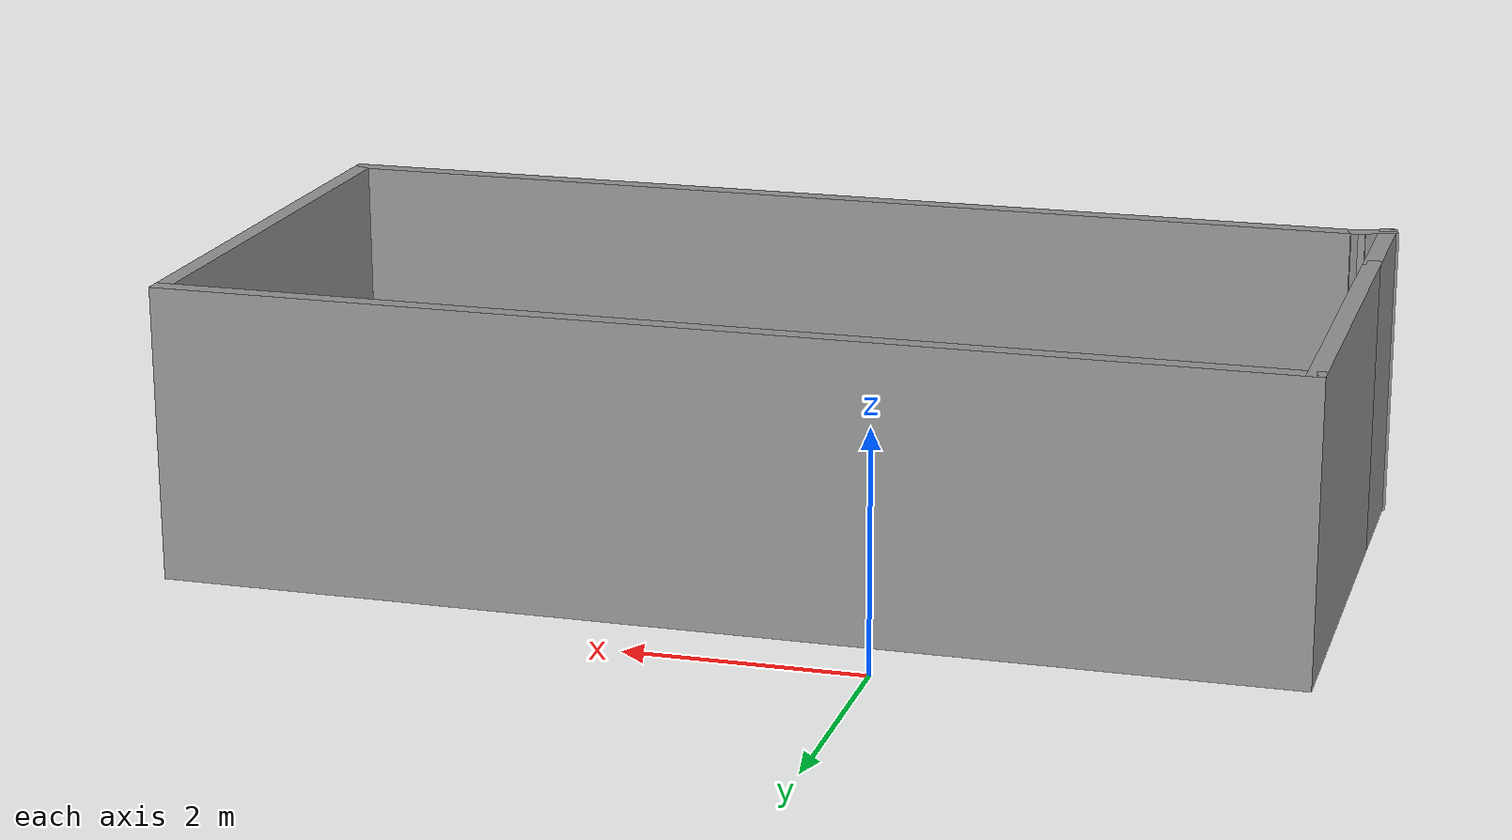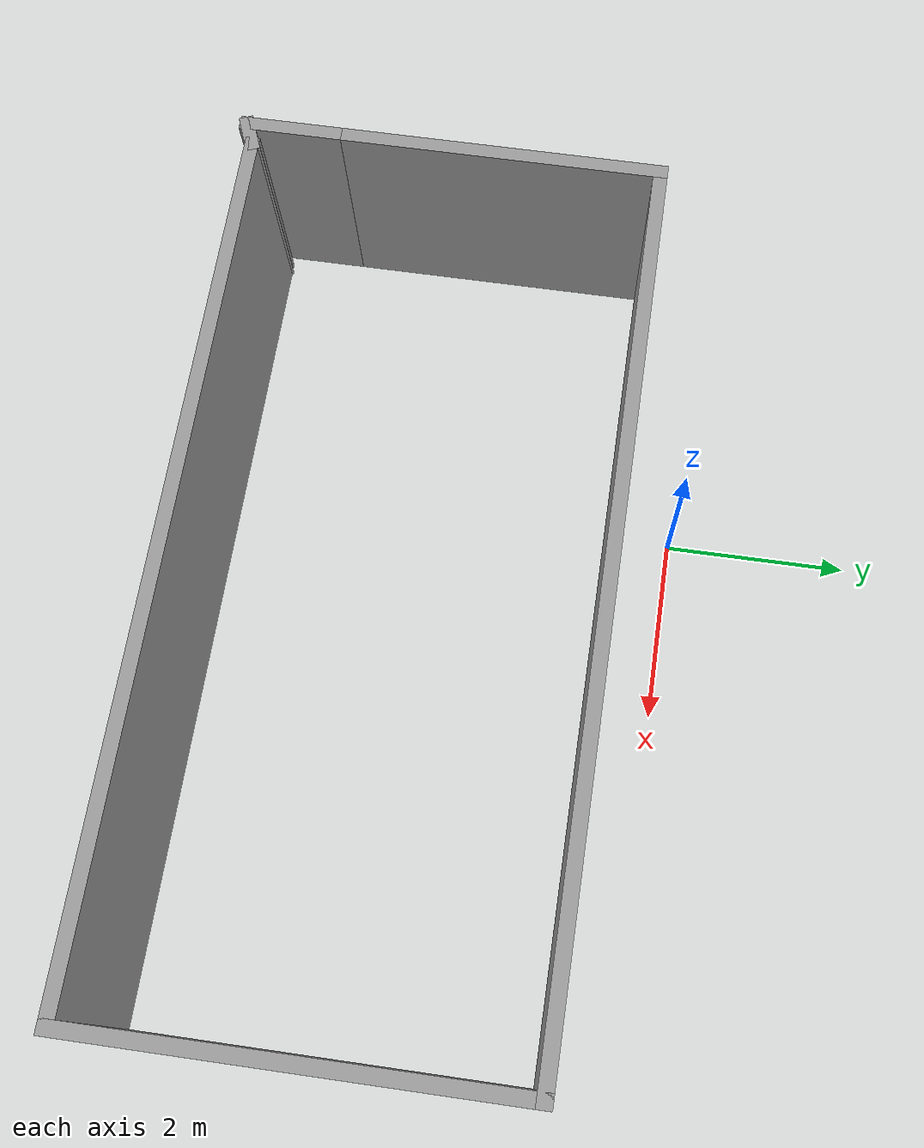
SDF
<?xml version='1.0'?>
<sdf version='1.7'>
  <model name='Untitled'>
    <pose>1.41376 -2.60374 0 0 -0 0</pose>
    <link name='Wall_0'>
      <collision name='Wall_0_Collision'>
        <geometry>
          <box>
            <size>3.5 0.15 2.5</size>
          </box>
        </geometry>
        <pose>0 0 1.25 0 -0 0</pose>
      </collision>
      <visual name='Wall_0_Visual'>
        <pose>0 0 1.25 0 -0 0</pose>
        <geometry>
          <box>
            <size>3.5 0.15 2.5</size>
          </box>
        </geometry>
        <material>
          <script>
            <uri>file://media/materials/scripts/gazebo.material</uri>
            <name>Gazebo/Grey</name>
          </script>
          <ambient>1 1 1 1</ambient>
        </material>
        <meta>
          <layer>0</layer>
        </meta>
      </visual>
      <pose>-4.66376 0.268745 0 0 -0 1.5708</pose>
    </link>
    <link name='Wall_1'>
      <collision name='Wall_1_Collision'>
        <geometry>
          <box>
            <size>9.5 0.15 2.5</size>
          </box>
        </geometry>
        <pose>0 0 1.25 0 -0 0</pose>
      </collision>
      <visual name='Wall_1_Visual'>
        <pose>0 0 1.25 0 -0 0</pose>
        <geometry>
          <box>
            <size>9.5 0.15 2.5</size>
          </box>
        </geometry>
        <material>
          <script>
            <uri>file://media/materials/scripts/gazebo.material</uri>
            <name>Gazebo/Grey</name>
          </script>
          <ambient>1 1 1 1</ambient>
        </material>
        <meta>
          <layer>0</layer>
        </meta>
      </visual>
      <pose>0.011245 1.94375 0 0 -0 0</pose>
    </link>
    <link name='Wall_2'>
      <collision name='Wall_2_Collision'>
        <geometry>
          <box>
            <size>4.5 0.15 2.5</size>
          </box>
        </geometry>
        <pose>0 0 1.25 0 -0 0</pose>
      </collision>
      <visual name='Wall_2_Visual'>
        <pose>0 0 1.25 0 -0 0</pose>
        <geometry>
          <box>
            <size>4.5 0.15 2.5</size>
          </box>
        </geometry>
        <material>
          <script>
            <uri>file://media/materials/scripts/gazebo.material</uri>
            <name>Gazebo/Grey</name>
          </script>
          <ambient>1 1 1 1</ambient>
        </material>
        <meta>
          <layer>0</layer>
        </meta>
      </visual>
      <pose>4.68625 -0.231255 0 0 -0 -1.5708</pose>
    </link>
    <link name='Wall_3'>
      <collision name='Wall_3_Collision'>
        <geometry>
          <box>
            <size>9.25 0.15 2.5</size>
          </box>
        </geometry>
        <pose>0 0 1.25 0 -0 0</pose>
      </collision>
      <visual name='Wall_3_Visual'>
        <pose>0 0 1.25 0 -0 0</pose>
        <geometry>
          <box>
            <size>9.25 0.15 2.5</size>
          </box>
        </geometry>
        <material>
          <script>
            <uri>file://media/materials/scripts/gazebo.material</uri>
            <name>Gazebo/Grey</name>
          </script>
          <ambient>1 1 1 1</ambient>
        </material>
        <meta>
          <layer>0</layer>
        </meta>
      </visual>
      <pose>0.136245 -2.40625 0 0 -0 3.14159</pose>
    </link>
    <link name='Wall_8'>
      <collision name='Wall_8_Collision'>
        <geometry>
          <box>
            <size>1.25 0.15 2.5</size>
          </box>
        </geometry>
        <pose>0 0 1.25 0 -0 0</pose>
      </collision>
      <visual name='Wall_8_Visual'>
        <pose>0 0 1.25 0 -0 0</pose>
        <geometry>
          <box>
            <size>1.25 0.15 2.5</size>
          </box>
        </geometry>
        <material>
          <script>
            <uri>file://media/materials/scripts/gazebo.material</uri>
            <name>Gazebo/Grey</name>
          </script>
          <ambient>1 1 1 1</ambient>
        </material>
        <meta>
          <layer>0</layer>
        </meta>
      </visual>
      <pose>-4.66376 -1.95626 0 0 -0 -1.5708</pose>
    </link>
    <link name='Wall_9'>
      <collision name='Wall_9_Collision'>
        <geometry>
          <box>
            <size>0.419258 0.15 2.5</size>
          </box>
        </geometry>
        <pose>0 0 1.25 0 -0 0</pose>
      </collision>
      <visual name='Wall_9_Visual'>
        <pose>0 0 1.25 0 -0 0</pose>
        <geometry>
          <box>
            <size>0.419258 0.15 2.5</size>
          </box>
        </geometry>
        <material>
          <script>
            <uri>file://media/materials/scripts/gazebo.material</uri>
            <name>Gazebo/Grey</name>
          </script>
          <ambient>1 1 1 1</ambient>
        </material>
        <meta>
          <layer>0</layer>
        </meta>
      </visual>
      <pose>-4.53876 -2.45626 0 0 -0 0.380506</pose>
    </link>
    <static>1</static>
  </model>
</sdf>
